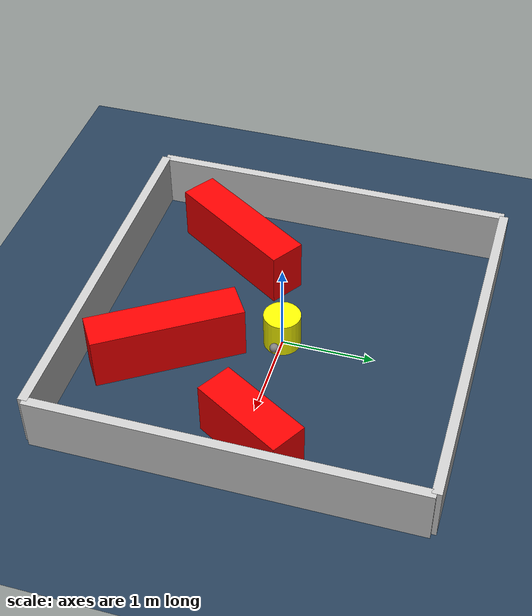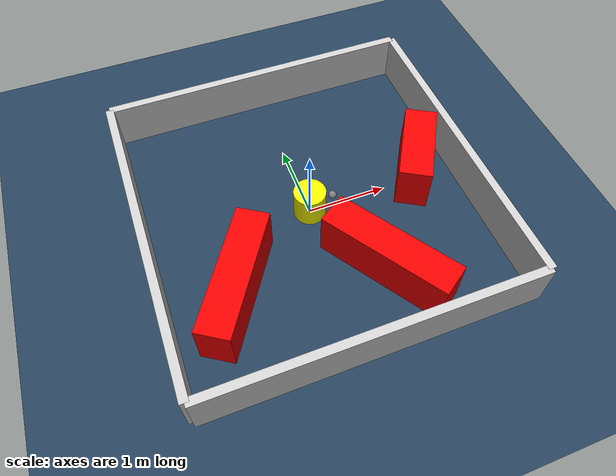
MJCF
<?xml version="1.0" ?>
<mujoco model="generated_environment">
  <option timestep="0.01" integrator="RK4" cone="elliptic"/>
  <default>
    <geom density="1"/>
  </default>
  <asset>
    <texture builtin="gradient" height="3072" rgb1="0.3 0.5 0.7" rgb2="0 0 0" type="skybox" width="512"/>
    <texture builtin="checker" height="300" mark="edge" markrgb="0.8 0.8 0.8" name="groundplane" rgb1="0.2 0.3 0.4" rgb2="0.1 0.2 0.3" type="2d" width="300"/>
    <material name="groundplane" reflectance="0.2" texrepeat="5 5" texture="groundplane" texuniform="true"/>
    <material name="robot" rgba="0.0 1.0 0.0 1"/>
  </asset>
  <worldbody>
    <light dir="0 0 -1" directional="true" pos="0 0 1.5"/>
    <geom condim="4" friction="1.0 0.005 0.001" material="groundplane" name="floor" size="0 0 0.05" type="plane"/>
    <body name="walls">
      <geom name="wall_1" condim="4" pos="-2.0 0.0 0.3" rgba="0.800000011920929 0.800000011920929 0.800000011920929 1.0" size="0.05 2.0 0.3" type="box"/>
      <geom name="wall_2" condim="4" pos="2.0 0.0 0.3" rgba="0.800000011920929 0.800000011920929 0.800000011920929 1.0" size="0.05 2.0 0.3" type="box"/>
      <geom name="wall_3" condim="4" pos="0.0 -2.0 0.3" rgba="0.800000011920929 0.800000011920929 0.800000011920929 1.0" size="2.0 0.05 0.3" type="box"/>
      <geom name="wall_4" condim="4" pos="0.0 2.0 0.3" rgba="0.800000011920929 0.800000011920929 0.800000011920929 1.0" size="2.0 0.05 0.3" type="box"/>
    </body>
    <body name="robot">
      <joint name="joint_x" type="slide" pos="0 0 0" axis="1 0 0"/>
      <joint name="joint_y" type="slide" pos="0 0 0" axis="0 1 0"/>
      <geom name="robot" type="sphere" pos="0.3 0.0 0.2" size="0.05" mass="5." friction="1.0 0.005 0.0001" condim="4" rgba="0.5 0.5 0.5 1.0"/>
      <site name="sensor_ball"/>
    </body>
    <body name="obstacle_movable_1">
      <geom name="obstacle_movable_1" condim="4" pos="0.0 0.0 0.2" euler="0 0 0.0" friction="1.0 0.005 0.001" rgba="1.0 1.0 0.0 1.0" size="0.2 0.2 0.0" type="cylinder" mass="0.1"/>
      <joint type="free"/>
    </body>
    <body name="obstacle_2_static">
      <geom name="obstacle_2_static" condim="4" pos="0.5375483723606236 -1.1021625161400157 0.3" euler="0 0 123.22474810624907" friction="1.0 0.005 0.001" rgba="1 0 0 1" size="0.803804287111517 0.2 0.3" type="box"/>
    </body>
    <body name="obstacle_3_static">
      <geom name="obstacle_3_static" condim="4" pos="-1.1705005778629194 -0.8076274254665021 0.3" euler="0 0 56.98665030491874" friction="1.0 0.005 0.001" rgba="1 0 0 1" size="0.7790394978377662 0.2 0.3" type="box"/>
    </body>
    <body name="obstacle_4_static">
      <geom name="obstacle_4_static" condim="4" pos="1.4855257542694398 0.11401348664857736 0.3" euler="0 0 239.60925616794972" friction="1.0 0.005 0.001" rgba="1 0 0 1" size="0.5332771756428629 0.2 0.3" type="box"/>
    </body>
  </worldbody>
  <actuator>
    <motor name="actuator_x" joint="joint_x" gear="1" ctrlrange="-1 1"/>
    <motor name="actuator_y" joint="joint_y" gear="1" ctrlrange="-1 1"/>
  </actuator>
</mujoco>
